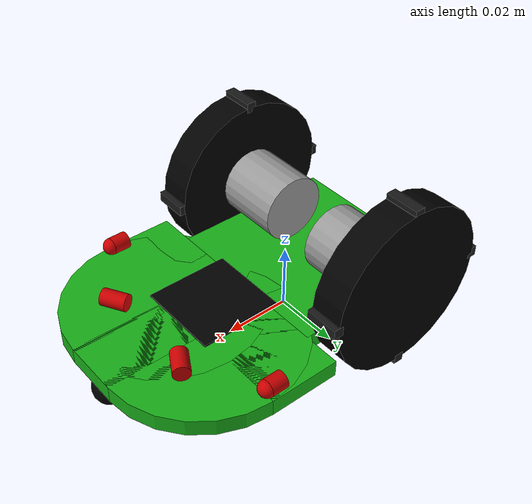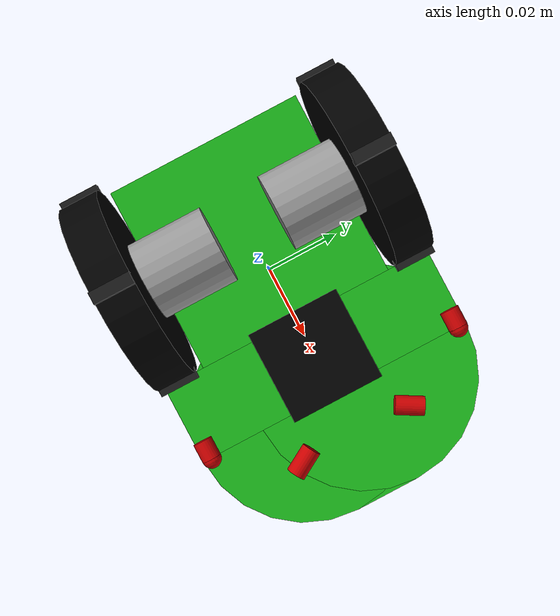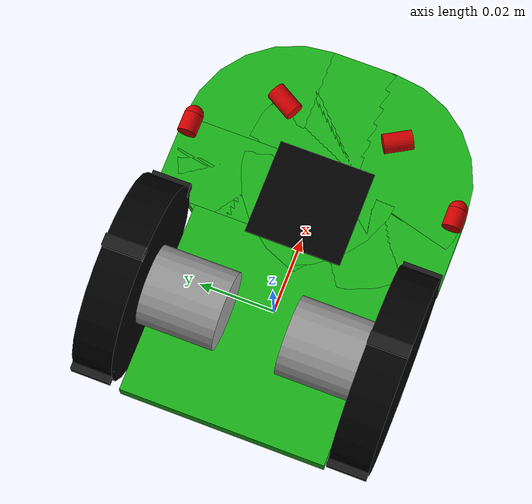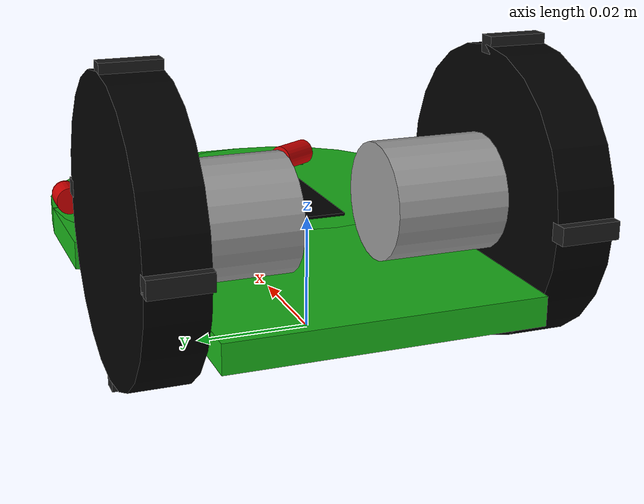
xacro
<?xml version="1.0"?>
<robot xmlns:xacro="http://www.ros.org/wiki/xacro" name="vayu">

  <xacro:property name="mouse_width" value="0.075"/>
  <xacro:property name="mouse_len" value="0.10"/>

  <xacro:property name="base_width" value="${mouse_width-2*wheel_thickness-2*base_wheel_gap}"/>
  <xacro:property name="base_len" value="${2*wheel_radius}"/>
  <xacro:property name="base_thickness" value="0.005"/>
  <xacro:property name="base_wheel_gap" value="${0.001}"/>
  <xacro:property name="base_curve_radius" value="0.029"/>
  <xacro:property name="base_zoffset" value="${(wheel_radius-caster_wheel_radius*2-base_thickness/2)}"/>

  <xacro:property name="wheel_radius" value="0.025"/>
  <xacro:property name="wheel_separation" value="${(base_width+2*base_wheel_gap+wheel_thickness)}"/>
  <xacro:property name="wheel_thickness" value="0.01"/>
  <xacro:property name="wheel_joint_offset" value="-0.01"/>

  <xacro:property name="caster_wheel_radius" value="0.005"/>
  <xacro:property name="caster_wheel_mass" value="0.001"/>
  <xacro:property name="caster_wheel_offset" value="${mouse_len+wheel_joint_offset-base_len/2-caster_wheel_radius}"/>
  <xacro:property name="caster_support_length" value="${wheel_radius-base_thickness/2-2*caster_wheel_radius-0.001}"/>

  <xacro:property name="laser_size_x" value="0.005"/>
  <xacro:property name="laser_size_y" value="0.005"/>
  <xacro:property name="laser_size_z" value="0.005"/>
  <xacro:property name="laser_origin_x" value="${mouse_len+wheel_joint_offset-base_len/2-laser_size_x/2-0.015}"/>
  <xacro:property name="laser_origin_y" value="0"/>
  <xacro:property name="laser_origin_z" value="-${base_zoffset-base_thickness/2-laser_size_z/2}"/>

  <!--Color Properties-->
  <material name="blue">
    <color rgba="0 0 0.8 1"/>
  </material>
  <material name="black">
    <color rgba="0 0 0 1"/>
  </material>
  <material name="white">
    <color rgba="1 1 1 1"/>
  </material>
  <material name="red">
    <color rgba="0.8 0.0 0.0 1.0"/>
  </material>
  <material name="green">
    <color rgba="0.1 0.7 0.1 1"/>
  </material>
  <material name="darkgrey">
    <color rgba="0.1 0.1 0.1 1"/>
  </material>

  <!--Base Footprint-->
  <link name="base_footprint">
    <!--xacro:box_inertia m="0.001" w="0.001" h="0.001" d="0.001"/-->
  </link>

  <!--Base link-->
  <link name="base_link">
    <visual>
      <origin xyz="${wheel_joint_offset} 0 -${base_zoffset}" rpy="0 0 0"/>
      <geometry>
        <box size="${base_len} ${base_width} ${base_thickness}"/>
      </geometry>
      <material name="green"/>
    </visual>
    <visual>
      <origin xyz="${wheel_joint_offset+base_len/2+(mouse_len-base_len-base_curve_radius)/2} 0 -${base_zoffset}" rpy="0 0 0"/>
      <geometry>
        <box size="${(mouse_len-base_len-base_curve_radius)} ${mouse_width} ${base_thickness}"/>
      </geometry>
      <material name="green"/>
    </visual>
    <visual>
      <origin xyz="${wheel_joint_offset+base_len/2+(mouse_len-base_len-base_curve_radius)} ${mouse_width/2-base_curve_radius} -${base_zoffset}" rpy="0 0 0"/>
      <geometry>
        <cylinder radius="${base_curve_radius}" length="${base_thickness}"/>
      </geometry>
      <material name="green"/>
    </visual>
    <visual>
      <origin xyz="${wheel_joint_offset+base_len/2+(mouse_len-base_len-base_curve_radius)} -${mouse_width/2-base_curve_radius} -${base_zoffset}" rpy="0 0 0"/>
      <geometry>
        <cylinder radius="${base_curve_radius}" length="${base_thickness}"/>
      </geometry>
      <material name="green"/>
    </visual>
    <visual>
      <origin xyz="${wheel_joint_offset+base_len/2+mouse_len-base_len-base_curve_radius/2} 0 -${base_zoffset}" rpy="0 0 0"/>
      <geometry>
        <box size="${base_curve_radius} ${mouse_width-2*base_curve_radius} ${base_thickness}"/>
      </geometry>
      <material name="green"/>
    </visual>

    <collision name="base_collision">
      <origin xyz="${wheel_joint_offset} 0 -${base_zoffset}" rpy="0 0 0"/>
      <geometry>
        <box size="${base_len} ${base_width} ${base_thickness}"/>
      </geometry>
    </collision>
    <collision name="base_1_collision">
      <origin xyz="${wheel_joint_offset+base_len/2+(mouse_len-base_len-base_curve_radius)/2} 0 -${base_zoffset}" rpy="0 0 0"/>
      <geometry>
        <box size="${(mouse_len-base_len-base_curve_radius)} ${mouse_width} ${base_thickness}"/>
      </geometry>
      <material name="green"/>
    </collision>
    <collision name="base_2_collision">
      <origin xyz="${wheel_joint_offset+base_len/2+(mouse_len-base_len-base_curve_radius)} ${mouse_width/2-base_curve_radius} -${base_zoffset}" rpy="0 0 0"/>
      <geometry>
        <cylinder radius="${base_curve_radius}" length="${base_thickness}"/>
      </geometry>
      <material name="green"/>
    </collision>
    <collision name="base_3_collision">
      <origin xyz="${wheel_joint_offset+base_len/2+(mouse_len-base_len-base_curve_radius)} -${mouse_width/2-base_curve_radius} -${base_zoffset}" rpy="0 0 0"/>
      <geometry>
        <cylinder radius="${base_curve_radius}" length="${base_thickness}"/>
      </geometry>
      <material name="green"/>
    </collision>
    <collision name="base_4_collision">
      <origin xyz="${wheel_joint_offset+base_len/2+mouse_len-base_len-base_curve_radius/2} 0 -${base_zoffset}" rpy="0 0 0"/>
      <geometry>
        <box size="${base_curve_radius} ${mouse_width-2*base_curve_radius} ${base_thickness}"/>
      </geometry>
      <material name="green"/>
    </collision>

  </link>

  <!--base_link to base_footprint Joint-->
  <joint name="base_link_joint" type="fixed">
    <origin xyz="0 0 ${wheel_radius}" rpy="0 0 0" />
    <parent link="base_footprint"/>
    <child link="base_link" />
  </joint>

  <link name="circuit_link">
    <visual>
      <origin xyz="0 0 0" rpy="0 0 0" />
      <geometry>
        <box size="${mouse_len/4} ${mouse_width/3} 0.001"/>
      </geometry>
      <material name="black"/>
    </visual>
        <inertial>
      <mass value="0.1"/>
      <inertia ixx="0.00022083" ixy="0.0" ixz="0.0" iyy="0.00022083" iyz="0.0" izz="0.00040833"/>
    </inertial>
  </link>

  <joint name="circuit_joint" type="fixed">
    <origin xyz="${wheel_joint_offset+base_len/2+(mouse_len-base_len-base_curve_radius)/2} 0 -${base_zoffset-base_thickness/2}" rpy="0 0 0" />
    <parent link="base_link"/>
    <child link="circuit_link" />
  </joint>

<link name="back_caster_link">
<visual>
      <origin xyz="${caster_wheel_offset} 0 -${base_zoffset+base_thickness/2+caster_wheel_radius}" rpy="0 0 0"/>
      <geometry>
	<sphere radius="${caster_wheel_radius}"/>
      </geometry>
      <material name="black"/>
    </visual>
    <collision>
      <origin xyz="${caster_wheel_offset} 0 -${base_zoffset+base_thickness/2+caster_wheel_radius}" rpy="0 0 0"/>
      <geometry>
        <sphere radius="${caster_wheel_radius}"/>
      </geometry>
    </collision>
</link>

  <joint name="back_caster_link_joint" type="fixed">
    <origin xyz="0 0 0" rpy="0 0 0" />
    <parent link="base_link"/>
    <child link="back_caster_link" />
  </joint>

  <!--Wheel link & joint macro-->
  <xacro:macro name="wheel" params="prefix reflect">
    <link name="${prefix}_wheel">
      <visual>
        <origin xyz="0 0 0" rpy="${pi/2} 0 0"/>
        <geometry>
          <cylinder radius="${wheel_radius}" length="${wheel_thickness}"/>
        </geometry>
        <material name="black"/>
      </visual>
      <collision>
        <origin xyz="0 0 0" rpy="${pi/2} 0 0"/>
        <geometry>
          <cylinder radius="${wheel_radius}" length="${wheel_thickness}"/>
        </geometry>
      </collision>
      <inertial>
      <mass value="0.025"/>
      <inertia ixx="2.3e-06" ixy="0.0" ixz="0.0" iyy="2.3e-06" iyz="0.0" izz="4.5e-06"/>
    </inertial>
    </link>

    <joint name="${prefix}_wheel_joint" type="continuous">
      <axis xyz="0 1 0" rpy="0 0 0" />
      <parent link="base_link"/>
      <child link="${prefix}_wheel"/>
      <origin xyz="${wheel_joint_offset} ${((base_width/2)+base_wheel_gap+wheel_thickness/2)*reflect} 0" rpy="0 0 0"/>
<limit effort="100" velocity="100"/>
      <joint_properties damping="0.0" friction="0.0"/>
    </joint>
  </xacro:macro>

  <!--Create Left & Right Wheel links/joints-->
  <xacro:wheel prefix="left" reflect="1"/>
  <xacro:wheel prefix="right" reflect="-1"/>

  <!--Tire link & joint macro-->
  <xacro:macro name="tire" params="prefix reflect">
    <link name="${prefix}_tire">
      <visual>
        <origin xyz="0 0 ${wheel_radius}" rpy="0 0 0"/>
        <geometry>
          <box size="0.003 ${wheel_thickness} 0.003"/>
        </geometry>
        <material name="darkgrey"/>
      </visual>
      <visual>
        <origin xyz="0 0 ${-wheel_radius}" rpy="0 0 0"/>
        <geometry>
          <box size="0.003 ${wheel_thickness} 0.003"/>
        </geometry>
        <material name="darkgrey"/>
      </visual>
      <visual>
        <origin xyz="${wheel_radius} 0 0" rpy="0 0 0"/>
        <geometry>
          <box size="0.003 ${wheel_thickness} 0.003"/>
        </geometry>
        <material name="darkgrey"/>
      </visual>
      <visual>
        <origin xyz="${-wheel_radius} 0 0" rpy="0 0 0"/>
        <geometry>
          <box size="0.003 ${wheel_thickness} 0.003"/>
        </geometry>
        <material name="darkgrey"/>
      </visual>
    </link>

    <joint name="${prefix}_tire_joint" type="fixed">
      <parent link="${prefix}_wheel"/>
      <child link="${prefix}_tire"/>
      <origin xyz="0 0 0" rpy="0 0 0"/>
    </joint>
  </xacro:macro>

  <!--Create Left & Right Wheel links/joints-->
  <xacro:tire prefix="left" reflect="1"/>
  <xacro:tire prefix="right" reflect="-1"/>

  <!--Motor link & joint macro-->
  <xacro:macro name="motor" params="prefix reflect">
    <link name="${prefix}_motor">
      <visual>
        <geometry>
          <cylinder radius="${wheel_radius-base_zoffset-base_thickness/2}" length="${base_width/2-base_wheel_gap}"/>
        </geometry>
        <material name="grey"/>
      </visual>
      <collision>
        <geometry>
          <cylinder radius="${wheel_radius-base_zoffset-base_thickness/2}" length="${wheel_thickness}"/>
        </geometry>
      </collision>
    </link>

    <joint name="${prefix}_motor_joint" type="fixed">
      <origin xyz="0 ${((base_width/2-0.005)/2+base_wheel_gap)*reflect} 0" rpy="${pi/2} 0 0"/>
      <parent link="${prefix}_wheel"/>
      <child link="${prefix}_motor"/>
      <origin xyz="0 0 0" rpy="0 0 0"/>
    </joint>
  </xacro:macro>

  <!--Create Left & Right Wheel links/joints-->
  <xacro:motor prefix="left" reflect="-1"/>
  <xacro:motor prefix="right" reflect="1"/>

  <!--Create Left & Right Wheel links/joints-->

  <!--Laser-->
  <link name="sensor_laser">
    <visual>
      <origin xyz="0 0.015 0" rpy="0 ${pi/2} ${pi/3}"/>
      <geometry>
        <cylinder radius="${laser_size_z/2}" length="${laser_size_x*3/2}"/>
      </geometry>
      <material name="red"/>
    </visual>
    <visual>
      <origin xyz="0 -0.015 0" rpy="0 ${pi/2} ${-pi/3}"/>
      <geometry>
        <cylinder radius="${laser_size_z/2}" length="${laser_size_x*3/2}"/>
      </geometry>
      <material name="red"/>
    </visual>
  </link>

  <joint name="sensor_laser_joint" type="fixed">
    <origin xyz="${laser_origin_x} ${laser_origin_y} ${laser_origin_z}" rpy="0 0 0" />
    <parent link="base_link"/>
    <child link="sensor_laser" />
  </joint>

<!--Laser-->
  <link name="sensor_laser_rf">
    <visual>
      <origin xyz="0 0 0" rpy="0 ${pi/2} 0"/>
      <geometry>
        <cylinder radius="${laser_size_z/2}" length="${laser_size_x}"/>
      </geometry>
      <material name="red"/>
    </visual>
    <visual>
      <origin xyz="${laser_size_x-laser_size_z/2} 0 0" rpy="0 ${pi/2} 0"/>
      <geometry>
        <sphere radius="${laser_size_z/2}"/>
      </geometry>
      <material name="red"/>
    </visual>
  </link>

  <joint name="sensor_laser_rf_joint" type="fixed">
    <origin xyz="${wheel_joint_offset+base_len/2+(mouse_len-base_len-base_curve_radius)-laser_size_x/2} ${-(mouse_width/2-laser_size_y/2)} ${laser_origin_z}" rpy="0 0 0" />
    <parent link="base_link"/>
    <child link="sensor_laser_rf" />
  </joint>

<!--Laser-->
  <link name="sensor_laser_lf">
    <visual>
      <origin xyz="0 0 0" rpy="0 ${pi/2} 0"/>
      <geometry>
        <cylinder radius="${laser_size_z/2}" length="${laser_size_x}"/>
      </geometry>
      <material name="red"/>
    </visual>
    <visual>
      <origin xyz="${laser_size_x-laser_size_z/2} 0 0" rpy="0 ${pi/2} 0"/>
      <geometry>
        <sphere radius="${laser_size_z/2}"/>
      </geometry>
      <material name="red"/>
    </visual>
  </link>

  <joint name="sensor_laser_lf_joint" type="fixed">
    <origin xyz="${wheel_joint_offset+base_len/2+(mouse_len-base_len-base_curve_radius)-laser_size_x/2} ${(mouse_width/2-laser_size_y/2)} ${laser_origin_z}" rpy="0 0 0" />
    <parent link="base_link"/>
    <child link="sensor_laser_lf" />
  </joint>

  <xacro:include filename="$(find micromouse_description)/urdf/mouse_gazebo.xacro"/>

</robot>
